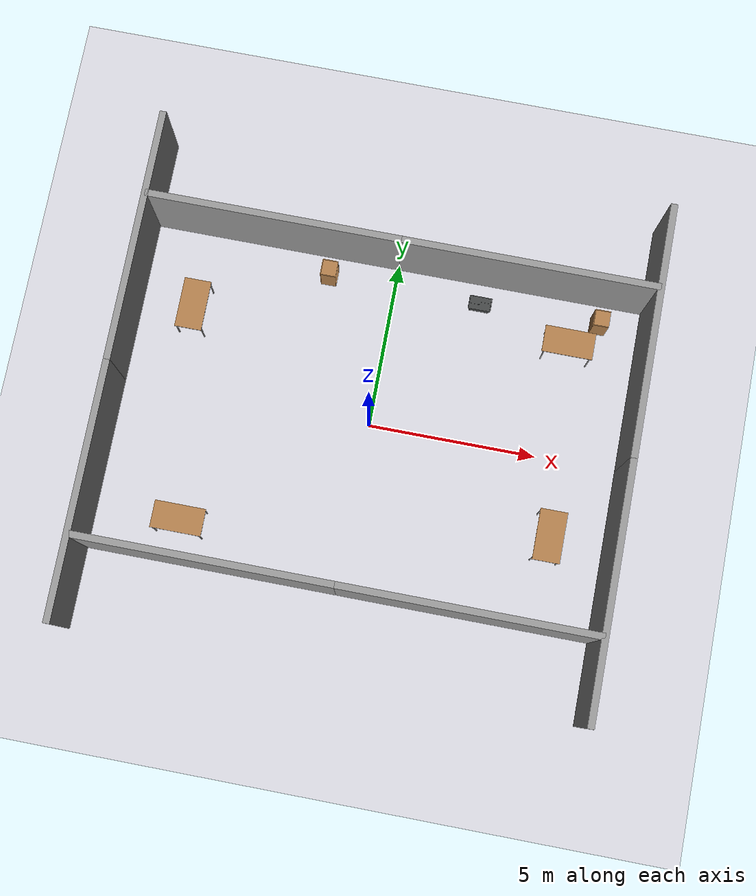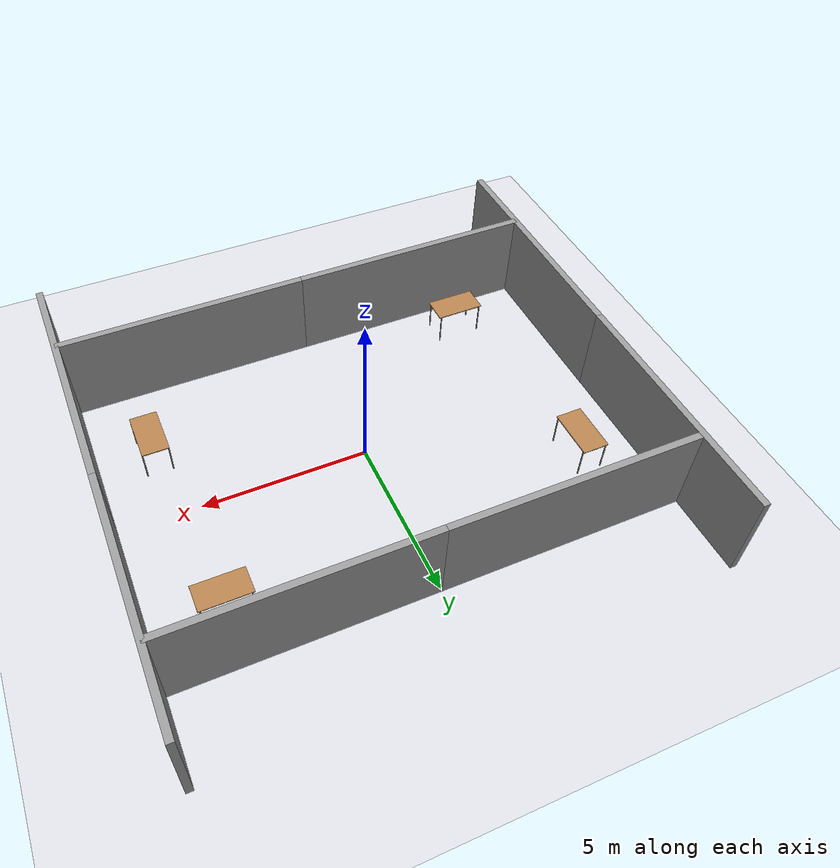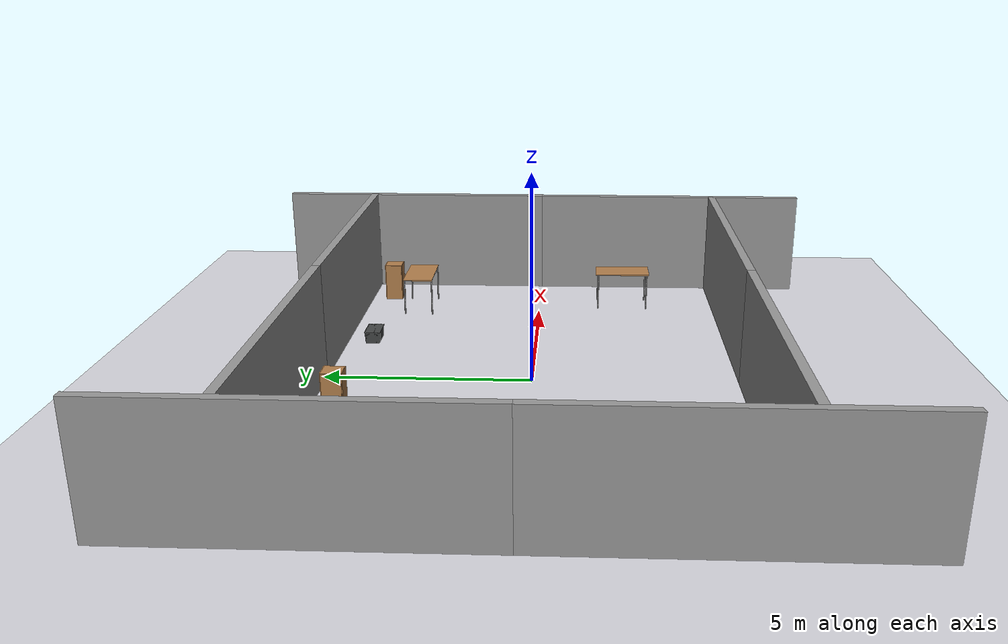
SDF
<sdf version="1.6">
 <world name="office">
  <physics name="default_physics" type="ode">
   <max_step_size>0.001</max_step_size>
   <real_time_factor>1.0</real_time_factor>
   <real_time_update_rate>1000</real_time_update_rate>
   <ode>
    <solver><type>quick</type><iters>50</iters><sor>1.3</sor></solver>
    <constraints>
     <cfm>0.0</cfm>
     <erp>0.2</erp>
     <contact_max_correcting_vel>1.0</contact_max_correcting_vel>
     <contact_surface_layer>0.001</contact_surface_layer>
    </constraints>
   </ode>
  </physics>
  <gravity>0 0 -9.8066</gravity>
  <scene>
   <ambient>0.62 0.62 0.65 1.0</ambient>
   <background>0.78 0.80 0.84 1.0</background>
   <shadows>true</shadows>
  </scene>
  <model name="lab_floor">
   <static>true</static>
   <link name="floor_link">
    <collision name="collision">
     <geometry><plane><normal>0 0 1</normal><size>100 100</size></plane></geometry>
    </collision>
    <visual name="visual">
     <geometry><plane><normal>0 0 1</normal><size>100 100</size></plane></geometry>
     <material>
      <ambient>0.78 0.78 0.80 1</ambient>
      <diffuse>0.85 0.85 0.88 1</diffuse>
      <specular>0.12 0.12 0.12 1</specular>
     </material>
    </visual>
   </link>
  </model>
  <include><uri>model://sun</uri></include>
  <include><uri>model://grey_wall</uri><name>wall_n_w</name><pose>-3.75 5.0 0 0 0 0</pose></include>
  <include><uri>model://grey_wall</uri><name>wall_n_e</name><pose>3.75 5.0 0 0 0 0</pose></include>
  <include><uri>model://grey_wall</uri><name>wall_s_w</name><pose>-3.75 -5.0 0 0 0 0</pose></include>
  <include><uri>model://grey_wall</uri><name>wall_s_e</name><pose>3.75 -5.0 0 0 0 0</pose></include>
  <include><uri>model://grey_wall</uri><name>wall_e_n</name><pose>7.5 3.75 0 0 0 1.57079632679</pose></include>
  <include><uri>model://grey_wall</uri><name>wall_e_s</name><pose>7.5 -3.75 0 0 0 1.57079632679</pose></include>
  <include><uri>model://grey_wall</uri><name>wall_w_n</name><pose>-7.5 3.75 0 0 0 1.57079632679</pose></include>
  <include>
   <uri>model://grey_wall</uri>
   <name>wall_w_s</name>
   <pose>-7.5 -3.75 0 0 0 1.57079632679</pose>
  </include>
  <include>
   <uri>model://cabinet</uri>
   <name>storage_cabinet</name>
   <pose>-2.0 4.28 0 0 0 3.14159265359</pose>
  </include>
  <include><uri>model://grey_tote</uri><name>storage_parts_tote</name><pose>2.6 4.25 0 0 0 0</pose></include>
  <include>
   <uri>model://cabinet</uri>
   <name>storage_cabinet_e</name>
   <pose>6.2 4.28 0 0 0 3.14159265359</pose>
  </include>
  <include><uri>model://table</uri><name>desk_west</name><pose>-5.75 2.45 0 0 0 1.57079632679</pose></include>
  <include><uri>model://table</uri><name>desk_north_east</name><pose>5.35 3.38 0 0 0 0</pose></include>
  <include><uri>model://table</uri><name>desk_south_west</name><pose>-4.85 -3.85 0 0 0 0</pose></include>
  <include><uri>model://table</uri><name>desk_east</name><pose>5.75 -2.35 0 0 0 -1.57079632679</pose></include>
 </world>
</sdf>

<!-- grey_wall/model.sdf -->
<sdf version="1.5">
  <model name="grey_wall">
    <static>true</static>
    <link name="link">
      <pose>0 0 1.4 0 0 0</pose>
      <collision name="collision">
        <geometry>
          <box>
            <size>7.5 0.2 2.8</size>
          </box>
        </geometry>
      </collision>
      <visual name="visual">
        <cast_shadows>false</cast_shadows>
        <geometry>
          <box>
            <size>7.5 0.2 2.8</size>
          </box>
        </geometry>
        <material>
          <script>
            <uri>model://../model_source/models/grey_wall/materials/scripts</uri>
            <uri>model://../model_source/models/grey_wall/materials/textures</uri>
            <name>vrc/grey_wall</name>
          </script>
        </material>
      </visual>
    </link>
  </model>
</sdf>

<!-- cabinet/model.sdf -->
<sdf version="1.5">
  <model name="cabinet">
    <static>true</static>
    <link name="cabinet_bottom_plate">
      <inertial>
        <pose>0 0 -1 0 0 0</pose>
        <inertia>
          <ixx>2.050000</ixx>
          <ixy>0</ixy>
          <ixz>0</ixz>
          <iyy>2.050000</iyy>
          <iyz>0</iyz>
          <izz>2.050000</izz>
        </inertia>
        <mass>25.000000</mass>
      </inertial>
      <collision name="cabinet_bottom_plate_geom">
        <pose>0 0 0.010000 0 0 0</pose>
        <geometry>
          <box>
            <size>0.450000 0.450000 0.020000</size>
          </box>
        </geometry>
      </collision>
      <visual name="cabinet_bottom_plate_geom_visual">
        <pose>0 0 0.010000 0 0 0</pose>
        <geometry>
          <box>
            <size>0.450000 0.450000 0.020000</size>
          </box>
        </geometry>
        <material>
          <script>
            <uri>model://media/materials/scripts/gazebo.material</uri>
            <name>Gazebo/Wood</name>
          </script>
        </material>
      </visual>
      <collision name="cabinet_bottom_plate_geom_cabinet_back_plate">
        <pose>0.235000 0 0.510000 0 0 0</pose>
        <geometry>
          <box>
            <size>0.020000 0.450000 1.020000</size>
          </box>
        </geometry>
      </collision>
      <visual name="cabinet_bottom_plate_geom_cabinet_back_plate_visual">
        <pose>0.235000 0 0.510000 0 0 0</pose>
        <geometry>
          <box>
            <size>0.020000 0.450000 1.020000</size>
          </box>
        </geometry>
        <material>
          <script>
            <uri>model://media/materials/scripts/gazebo.material</uri>
            <name>Gazebo/Wood</name>
          </script>
        </material>
      </visual>
      <collision name="cabinet_bottom_plate_geom_cabinet_left_plate">
        <pose>0 0.235000 0.510000 0 0 0</pose>
        <geometry>
          <box>
            <size>0.450000 0.020000 1.020000</size>
          </box>
        </geometry>
      </collision>
      <visual name="cabinet_bottom_plate_geom_cabinet_left_plate_visual">
        <pose>0 0.235000 0.510000 0 0 0</pose>
        <geometry>
          <box>
            <size>0.450000 0.020000 1.020000</size>
          </box>
        </geometry>
        <material>
          <script>
            <uri>model://media/materials/scripts/gazebo.material</uri>
            <name>Gazebo/Wood</name>
          </script>
        </material>
      </visual>
      <collision name="cabinet_bottom_plate_geom_cabinet_middle_plate">
        <pose>0 0 0.510000 0 0 0</pose>
        <geometry>
          <box>
            <size>0.450000 0.450000 0.020000</size>
          </box>
        </geometry>
      </collision>
      <visual name="cabinet_bottom_plate_geom_cabinet_middle_plate_visual">
        <pose>0 0 0.510000 0 0 0</pose>
        <geometry>
          <box>
            <size>0.450000 0.450000 0.020000</size>
          </box>
        </geometry>
        <material>
          <script>
            <uri>model://media/materials/scripts/gazebo.material</uri>
            <name>Gazebo/Wood</name>
          </script>
        </material>
      </visual>
      <collision name="cabinet_bottom_plate_geom_cabinet_right_plate">
        <pose>0 -0.235000 0.510000 0 0 0</pose>
        <geometry>
          <box>
            <size>0.450000 0.020000 1.020000</size>
          </box>
        </geometry>
      </collision>
      <visual name="cabinet_bottom_plate_geom_cabinet_right_plate_visual">
        <pose>0 -0.235000 0.510000 0 0 0</pose>
        <geometry>
          <box>
            <size>0.450000 0.020000 1.020000</size>
          </box>
        </geometry>
        <material>
          <script>
            <uri>model://media/materials/scripts/gazebo.material</uri>
            <name>Gazebo/Wood</name>
          </script>
        </material>
      </visual>
      <collision name="cabinet_bottom_plate_geom_cabinet_top_plate">
        <pose>0 0 1.010000 0 0 0</pose>
        <geometry>
          <box>
            <size>0.450000 0.450000 0.020000</size>
          </box>
        </geometry>
      </collision>
      <visual name="cabinet_bottom_plate_geom_cabinet_top_plate_visual">
        <pose>0 0 1.010000 0 0 0</pose>
        <geometry>
          <box>
            <size>0.450000 0.450000 0.020000</size>
          </box>
        </geometry>
        <material>
          <script>
            <uri>model://media/materials/scripts/gazebo.material</uri>
            <name>Gazebo/Wood</name>
          </script>
        </material>
      </visual>
    </link>
  </model>
</sdf>

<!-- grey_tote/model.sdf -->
<sdf version="1.5">
  <model name="grey_tote">
    <link name="link">
      <inertial>
        <pose>0 0 0.141549545 0 0 0</pose>
        <mass>3.53802</mass>
        <inertia>
          <ixx>0.068835836</ixx>
          <ixy>0</ixy>
          <ixz>0</ixz>
          <iyy>0.139596236</iyy>
          <iyz>0</iyz>
          <izz>0.155908748</izz>
        </inertia>
      </inertial>

      <collision name="lid">
        <pose>0 0 0.28958 0 0 0</pose>
        <geometry>
          <box>
            <size>0.67768 0.41298 0.01588</size>
          </box>
        </geometry>
      </collision>

      <collision name="lid_lip_1">
        <pose>0 0.20063 0.3048 0 0 0</pose>
        <geometry>
          <box>
            <size>0.65068 0.0105 0.0127</size>
          </box>
        </geometry>
      </collision>

      <collision name="lid_lip_2">
        <pose>0 -0.20063 0.3048 0 0 0</pose>
        <geometry>
          <box>
            <size>0.65068 0.0105 0.0127</size>
          </box>
        </geometry>
      </collision>

      <collision name="lid_lip_3">
        <pose>0.32585 0 0.3048 0 0 0</pose>
        <geometry>
          <box>
            <size>0.02602 0.31202 0.0127</size>
          </box>
        </geometry>
      </collision>

      <collision name="lid_lip_4">
        <pose>-0.32585 0 0.3048 0 0 0</pose>
        <geometry>
          <box>
            <size>0.02602 0.31202 0.0127</size>
          </box>
        </geometry>
      </collision>

      <collision name="side_wall_1">
        <pose>0 -0.18 0.141549545 0.0611474431 0 0</pose>
        <geometry>
          <box>
            <size>0.58404 0.02602 0.28309909</size>
          </box>
        </geometry>
      </collision>

      <collision name="side_wall_2">
        <pose>0 0.18 0.141549545 -0.0611474431 0 0</pose>
        <geometry>
          <box>
            <size>0.58404 0.02602 0.28309909</size>
          </box>
        </geometry>
      </collision>

      <collision name="side_wall_3">
        <pose>0.305 0 0.141549545 0 0.0611474431 0</pose>
        <geometry>
          <box>
            <size>0.02602 0.33046 0.28309909</size>
          </box>
        </geometry>
      </collision>

      <collision name="side_wall_4">
        <pose>-0.305 0 0.141549545 0 -0.0611474431 0</pose>
        <geometry>
          <box>
            <size>0.02602 0.33046 0.28309909</size>
          </box>
        </geometry>
      </collision>

      <collision name="bottom">
        <pose>0 0 0.01 0 0 0</pose>
        <geometry>
          <box>
            <size>0.58404 0.33046 0.02</size>
          </box>
        </geometry>
      </collision>

      <collision name="corner_1">
        <pose>0.30202 -0.175 0.141549545 0.0611474431 0.0611474431 0</pose>
        <geometry>
          <cylinder>
            <radius>0.01268</radius>
            <length>0.28309909</length>
          </cylinder>
        </geometry>
      </collision>

      <collision name="corner_2">
        <pose>-0.30202 -0.175 0.141549545 0.0611474431 -0.0611474431 0</pose>
        <geometry>
          <cylinder>
            <radius>0.01268</radius>
            <length>0.28309909</length>
          </cylinder>
        </geometry>
      </collision>

      <collision name="corner_3">
        <pose>-0.30202 0.175 0.141549545 -0.0611474431 -0.0611474431 0</pose>
        <geometry>
          <cylinder>
            <radius>0.01268</radius>
            <length>0.28309909</length>
          </cylinder>
        </geometry>
      </collision>

      <collision name="corner_4">
        <pose>0.30202 0.175 0.141549545 -0.0611474431 0.0611474431 0</pose>
        <geometry>
          <cylinder>
            <radius>0.01268</radius>
            <length>0.28309909</length>
          </cylinder>
        </geometry>
      </collision>

      <visual name="visual">
        <geometry>
          <mesh>
            <uri>model://grey_tote/meshes/tote.dae</uri>
          </mesh>
        </geometry>
      </visual>
    </link>
  </model>
</sdf>

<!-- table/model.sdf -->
<sdf version="1.5">
  <model name="table">
    <static>true</static>
    <link name="link">
      <collision name="surface">
        <pose>0 0 1.0 0 0 0</pose>
        <geometry>
          <box>
            <size>1.5 0.8 0.03</size>
          </box>
        </geometry>
        <surface>
          <friction>
            <ode>
              <mu>0.6</mu>
              <mu2>0.6</mu2>
            </ode>
          </friction>
        </surface>
      </collision>
      <visual name="visual1">
        <pose>0 0 1.0 0 0 0</pose>
        <geometry>
          <box>
            <size>1.5 0.8 0.03</size>
          </box>
        </geometry>
        <material>
          <script>
            <uri>model://media/materials/scripts/gazebo.material</uri>
            <name>Gazebo/Wood</name>
          </script>
        </material>
      </visual>
      <collision name="front_left_leg">
        <pose>0.68 0.38 0.5 0 0 0</pose>
        <geometry>
          <cylinder>
            <radius>0.02</radius>
            <length>1.0</length>
          </cylinder>
        </geometry>
      </collision>
      <visual name="front_left_leg">
        <pose>0.68 0.38 0.5 0 0 0</pose>
        <geometry>
          <cylinder>
            <radius>0.02</radius>
            <length>1.0</length>
          </cylinder>
        </geometry>
        <material>
          <script>
            <uri>model://media/materials/scripts/gazebo.material</uri>
            <name>Gazebo/Grey</name>
          </script>
        </material>
      </visual>
      <collision name="front_right_leg">
        <pose>0.68 -0.38 0.5 0 0 0</pose>
        <geometry>
          <cylinder>
            <radius>0.02</radius>
            <length>1.0</length>
          </cylinder>
        </geometry>
      </collision>
      <visual name="front_right_leg">
        <pose>0.68 -0.38 0.5 0 0 0</pose>
        <geometry>
          <cylinder>
            <radius>0.02</radius>
            <length>1.0</length>
          </cylinder>
        </geometry>
        <material>
          <script>
            <uri>model://media/materials/scripts/gazebo.material</uri>
            <name>Gazebo/Grey</name>
          </script>
        </material>
      </visual>
      <collision name="back_right_leg">
        <pose>-0.68 -0.38 0.5 0 0 0</pose>
        <geometry>
          <cylinder>
            <radius>0.02</radius>
            <length>1.0</length>
          </cylinder>
        </geometry>
      </collision>
      <visual name="back_right_leg">
        <pose>-0.68 -0.38 0.5 0 0 0</pose>
        <geometry>
          <cylinder>
            <radius>0.02</radius>
            <length>1.0</length>
          </cylinder>
        </geometry>
        <material>
          <script>
            <uri>model://media/materials/scripts/gazebo.material</uri>
            <name>Gazebo/Grey</name>
          </script>
        </material>
      </visual>
      <collision name="back_left_leg">
        <pose>-0.68 0.38 0.5 0 0 0</pose>
        <geometry>
          <cylinder>
            <radius>0.02</radius>
            <length>1.0</length>
          </cylinder>
        </geometry>
      </collision>
      <visual name="back_left_leg">
        <pose>-0.68 0.38 0.5 0 0 0</pose>
        <geometry>
          <cylinder>
            <radius>0.02</radius>
            <length>1.0</length>
          </cylinder>
        </geometry>
        <material>
          <script>
            <uri>model://media/materials/scripts/gazebo.material</uri>
            <name>Gazebo/Grey</name>
          </script>
        </material>
      </visual>
    </link>
  </model>
</sdf>
